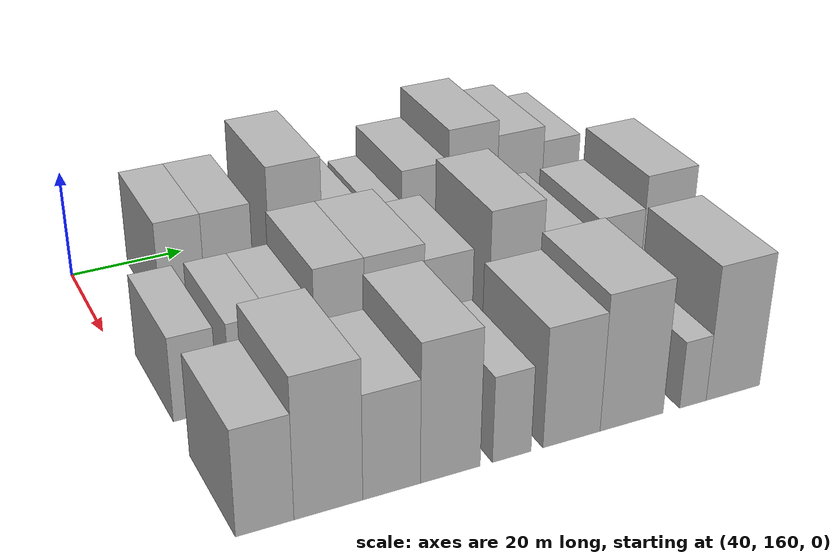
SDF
<sdf version="1.6">
 <world name="default">
  <model name="building_55">
   <static>1</static>
   <pose>50.0000 173.9923 0 0.000000 0.000000 0.000000</pose>
   <link name="link">
    <pose>0 0 9.00 0 0 0</pose>
    <collision name="collision"><geometry><box><size>20.0000 7.9048 18.0000</size></box></geometry></collision>
    <visual name="visual">
     <cast_shadows>0</cast_shadows>
     <geometry><box><size>20.0000 7.9048 18.0000</size></box></geometry>
     <material>
      <script>
       <uri>model://HANNAS_wall/materials/scripts</uri>
       <uri>model://HANNAS_wall/materials/textures</uri>
       <name>vrc/HANNAS_wall</name>
      </script>
     </material>
    </visual>
   </link>
  </model>
  <model name="building_56">
   <static>1</static>
   <pose>50.0000 182.2868 0 0.000000 0.000000 0.000000</pose>
   <link name="link">
    <pose>0 0 9.00 0 0 0</pose>
    <collision name="collision"><geometry><box><size>20.0000 8.6842 18.0000</size></box></geometry></collision>
    <visual name="visual">
     <cast_shadows>0</cast_shadows>
     <geometry><box><size>20.0000 8.6842 18.0000</size></box></geometry>
     <material>
      <script>
       <uri>model://HANNAS_wall/materials/scripts</uri>
       <uri>model://HANNAS_wall/materials/textures</uri>
       <name>vrc/HANNAS_wall</name>
      </script>
     </material>
    </visual>
   </link>
  </model>
  <model name="building_57">
   <static>1</static>
   <pose>50.0000 194.4959 0 0.000000 0.000000 0.000000</pose>
   <link name="link">
    <pose>0 0 12.00 0 0 0</pose>
    <collision name="collision"><geometry><box><size>20.0000 9.7340 24.0000</size></box></geometry></collision>
    <visual name="visual">
     <cast_shadows>0</cast_shadows>
     <geometry><box><size>20.0000 9.7340 24.0000</size></box></geometry>
     <material>
      <script>
       <uri>model://HANNAS_wall/materials/scripts</uri>
       <uri>model://HANNAS_wall/materials/textures</uri>
       <name>vrc/HANNAS_wall</name>
      </script>
     </material>
    </visual>
   </link>
  </model>
  <model name="building_58">
   <static>1</static>
   <pose>50.0000 202.5666 0 0.000000 0.000000 0.000000</pose>
   <link name="link">
    <pose>0 0 7.50 0 0 0</pose>
    <collision name="collision"><geometry><box><size>20.0000 6.4074 15.0000</size></box></geometry></collision>
    <visual name="visual">
     <cast_shadows>0</cast_shadows>
     <geometry><box><size>20.0000 6.4074 15.0000</size></box></geometry>
     <material>
      <script>
       <uri>model://HANNAS_wall/materials/scripts</uri>
       <uri>model://HANNAS_wall/materials/textures</uri>
       <name>vrc/HANNAS_wall</name>
      </script>
     </material>
    </visual>
   </link>
  </model>
  <model name="building_59">
   <static>1</static>
   <pose>50.0000 211.6004 0 0.000000 0.000000 0.000000</pose>
   <link name="link">
    <pose>0 0 6.00 0 0 0</pose>
    <collision name="collision"><geometry><box><size>20.0000 5.6602 12.0000</size></box></geometry></collision>
    <visual name="visual">
     <cast_shadows>0</cast_shadows>
     <geometry><box><size>20.0000 5.6602 12.0000</size></box></geometry>
     <material>
      <script>
       <uri>model://HANNAS_wall/materials/scripts</uri>
       <uri>model://HANNAS_wall/materials/textures</uri>
       <name>vrc/HANNAS_wall</name>
      </script>
     </material>
    </visual>
   </link>
  </model>
  <model name="building_60">
   <static>1</static>
   <pose>50.0000 218.9166 0 0.000000 0.000000 0.000000</pose>
   <link name="link">
    <pose>0 0 9.00 0 0 0</pose>
    <collision name="collision"><geometry><box><size>20.0000 8.9720 18.0000</size></box></geometry></collision>
    <visual name="visual">
     <cast_shadows>0</cast_shadows>
     <geometry><box><size>20.0000 8.9720 18.0000</size></box></geometry>
     <material>
      <script>
       <uri>model://HANNAS_wall/materials/scripts</uri>
       <uri>model://HANNAS_wall/materials/textures</uri>
       <name>vrc/HANNAS_wall</name>
      </script>
     </material>
    </visual>
   </link>
  </model>
  <model name="building_61">
   <static>1</static>
   <pose>50.0000 228.2764 0 0.000000 0.000000 0.000000</pose>
   <link name="link">
    <pose>0 0 12.00 0 0 0</pose>
    <collision name="collision"><geometry><box><size>20.0000 9.7477 24.0000</size></box></geometry></collision>
    <visual name="visual">
     <cast_shadows>0</cast_shadows>
     <geometry><box><size>20.0000 9.7477 24.0000</size></box></geometry>
     <material>
      <script>
       <uri>model://HANNAS_wall/materials/scripts</uri>
       <uri>model://HANNAS_wall/materials/textures</uri>
       <name>vrc/HANNAS_wall</name>
      </script>
     </material>
    </visual>
   </link>
  </model>
  <model name="building_62">
   <static>1</static>
   <pose>50.0000 237.7751 0 0.000000 0.000000 0.000000</pose>
   <link name="link">
    <pose>0 0 10.50 0 0 0</pose>
    <collision name="collision"><geometry><box><size>20.0000 9.2495 21.0000</size></box></geometry></collision>
    <visual name="visual">
     <cast_shadows>0</cast_shadows>
     <geometry><box><size>20.0000 9.2495 21.0000</size></box></geometry>
     <material>
      <script>
       <uri>model://HANNAS_wall/materials/scripts</uri>
       <uri>model://HANNAS_wall/materials/textures</uri>
       <name>vrc/HANNAS_wall</name>
      </script>
     </material>
    </visual>
   </link>
  </model>
  <model name="building_63">
   <static>1</static>
   <pose>50.0000 246.1008 0 0.000000 0.000000 0.000000</pose>
   <link name="link">
    <pose>0 0 9.00 0 0 0</pose>
    <collision name="collision"><geometry><box><size>20.0000 7.4020 18.0000</size></box></geometry></collision>
    <visual name="visual">
     <cast_shadows>0</cast_shadows>
     <geometry><box><size>20.0000 7.4020 18.0000</size></box></geometry>
     <material>
      <script>
       <uri>model://HANNAS_wall/materials/scripts</uri>
       <uri>model://HANNAS_wall/materials/textures</uri>
       <name>vrc/HANNAS_wall</name>
      </script>
     </material>
    </visual>
   </link>
  </model>
  <model name="building_130">
   <static>1</static>
   <pose>79.0000 166.5161 0 0.000000 0.000000 0.000000</pose>
   <link name="link">
    <pose>0 0 7.50 0 0 0</pose>
    <collision name="collision"><geometry><box><size>20.0000 7.1336 15.0000</size></box></geometry></collision>
    <visual name="visual">
     <cast_shadows>0</cast_shadows>
     <geometry><box><size>20.0000 7.1336 15.0000</size></box></geometry>
     <material>
      <script>
       <uri>model://HANNAS_wall/materials/scripts</uri>
       <uri>model://HANNAS_wall/materials/textures</uri>
       <name>vrc/HANNAS_wall</name>
      </script>
     </material>
    </visual>
   </link>
  </model>
  <model name="building_131">
   <static>1</static>
   <pose>79.0000 175.6493 0 0.000000 0.000000 0.000000</pose>
   <link name="link">
    <pose>0 0 7.50 0 0 0</pose>
    <collision name="collision"><geometry><box><size>20.0000 7.1329 15.0000</size></box></geometry></collision>
    <visual name="visual">
     <cast_shadows>0</cast_shadows>
     <geometry><box><size>20.0000 7.1329 15.0000</size></box></geometry>
     <material>
      <script>
       <uri>model://HANNAS_wall/materials/scripts</uri>
       <uri>model://HANNAS_wall/materials/textures</uri>
       <name>vrc/HANNAS_wall</name>
      </script>
     </material>
    </visual>
   </link>
  </model>
  <model name="building_132">
   <static>1</static>
   <pose>79.0000 182.7060 0 0.000000 0.000000 0.000000</pose>
   <link name="link">
    <pose>0 0 7.50 0 0 0</pose>
    <collision name="collision"><geometry><box><size>20.0000 6.9805 15.0000</size></box></geometry></collision>
    <visual name="visual">
     <cast_shadows>0</cast_shadows>
     <geometry><box><size>20.0000 6.9805 15.0000</size></box></geometry>
     <material>
      <script>
       <uri>model://HANNAS_wall/materials/scripts</uri>
       <uri>model://HANNAS_wall/materials/textures</uri>
       <name>vrc/HANNAS_wall</name>
      </script>
     </material>
    </visual>
   </link>
  </model>
  <model name="building_133">
   <static>1</static>
   <pose>79.0000 190.4262 0 0.000000 0.000000 0.000000</pose>
   <link name="link">
    <pose>0 0 10.50 0 0 0</pose>
    <collision name="collision"><geometry><box><size>20.0000 8.4598 21.0000</size></box></geometry></collision>
    <visual name="visual">
     <cast_shadows>0</cast_shadows>
     <geometry><box><size>20.0000 8.4598 21.0000</size></box></geometry>
     <material>
      <script>
       <uri>model://HANNAS_wall/materials/scripts</uri>
       <uri>model://HANNAS_wall/materials/textures</uri>
       <name>vrc/HANNAS_wall</name>
      </script>
     </material>
    </visual>
   </link>
  </model>
  <model name="building_134">
   <static>1</static>
   <pose>79.0000 199.7862 0 0.000000 0.000000 0.000000</pose>
   <link name="link">
    <pose>0 0 10.50 0 0 0</pose>
    <collision name="collision"><geometry><box><size>20.0000 10.2602 21.0000</size></box></geometry></collision>
    <visual name="visual">
     <cast_shadows>0</cast_shadows>
     <geometry><box><size>20.0000 10.2602 21.0000</size></box></geometry>
     <material>
      <script>
       <uri>model://HANNAS_wall/materials/scripts</uri>
       <uri>model://HANNAS_wall/materials/textures</uri>
       <name>vrc/HANNAS_wall</name>
      </script>
     </material>
    </visual>
   </link>
  </model>
  <model name="building_135">
   <static>1</static>
   <pose>79.0000 209.2222 0 0.000000 0.000000 0.000000</pose>
   <link name="link">
    <pose>0 0 9.00 0 0 0</pose>
    <collision name="collision"><geometry><box><size>20.0000 8.6118 18.0000</size></box></geometry></collision>
    <visual name="visual">
     <cast_shadows>0</cast_shadows>
     <geometry><box><size>20.0000 8.6118 18.0000</size></box></geometry>
     <material>
      <script>
       <uri>model://HANNAS_wall/materials/scripts</uri>
       <uri>model://HANNAS_wall/materials/textures</uri>
       <name>vrc/HANNAS_wall</name>
      </script>
     </material>
    </visual>
   </link>
  </model>
  <model name="building_136">
   <static>1</static>
   <pose>79.0000 221.3750 0 0.000000 0.000000 0.000000</pose>
   <link name="link">
    <pose>0 0 12.00 0 0 0</pose>
    <collision name="collision"><geometry><box><size>20.0000 9.6940 24.0000</size></box></geometry></collision>
    <visual name="visual">
     <cast_shadows>0</cast_shadows>
     <geometry><box><size>20.0000 9.6940 24.0000</size></box></geometry>
     <material>
      <script>
       <uri>model://HANNAS_wall/materials/scripts</uri>
       <uri>model://HANNAS_wall/materials/textures</uri>
       <name>vrc/HANNAS_wall</name>
      </script>
     </material>
    </visual>
   </link>
  </model>
  <model name="building_137">
   <static>1</static>
   <pose>79.0000 229.8721 0 0.000000 0.000000 0.000000</pose>
   <link name="link">
    <pose>0 0 9.00 0 0 0</pose>
    <collision name="collision"><geometry><box><size>20.0000 7.3002 18.0000</size></box></geometry></collision>
    <visual name="visual">
     <cast_shadows>0</cast_shadows>
     <geometry><box><size>20.0000 7.3002 18.0000</size></box></geometry>
     <material>
      <script>
       <uri>model://HANNAS_wall/materials/scripts</uri>
       <uri>model://HANNAS_wall/materials/textures</uri>
       <name>vrc/HANNAS_wall</name>
      </script>
     </material>
    </visual>
   </link>
  </model>
  <model name="building_138">
   <static>1</static>
   <pose>79.0000 240.8818 0 0.000000 0.000000 0.000000</pose>
   <link name="link">
    <pose>0 0 9.00 0 0 0</pose>
    <collision name="collision"><geometry><box><size>20.0000 8.7191 18.0000</size></box></geometry></collision>
    <visual name="visual">
     <cast_shadows>0</cast_shadows>
     <geometry><box><size>20.0000 8.7191 18.0000</size></box></geometry>
     <material>
      <script>
       <uri>model://HANNAS_wall/materials/scripts</uri>
       <uri>model://HANNAS_wall/materials/textures</uri>
       <name>vrc/HANNAS_wall</name>
      </script>
     </material>
    </visual>
   </link>
  </model>
  <model name="building_139">
   <static>1</static>
   <pose>79.0000 250.0585 0 0.000000 0.000000 0.000000</pose>
   <link name="link">
    <pose>0 0 12.00 0 0 0</pose>
    <collision name="collision"><geometry><box><size>20.0000 9.6342 24.0000</size></box></geometry></collision>
    <visual name="visual">
     <cast_shadows>0</cast_shadows>
     <geometry><box><size>20.0000 9.6342 24.0000</size></box></geometry>
     <material>
      <script>
       <uri>model://HANNAS_wall/materials/scripts</uri>
       <uri>model://HANNAS_wall/materials/textures</uri>
       <name>vrc/HANNAS_wall</name>
      </script>
     </material>
    </visual>
   </link>
  </model>
  <model name="building_206">
   <static>1</static>
   <pose>108.0000 166.8557 0 0.000000 0.000000 0.000000</pose>
   <link name="link">
    <pose>0 0 9.00 0 0 0</pose>
    <collision name="collision"><geometry><box><size>20.0000 8.5937 18.0000</size></box></geometry></collision>
    <visual name="visual">
     <cast_shadows>0</cast_shadows>
     <geometry><box><size>20.0000 8.5937 18.0000</size></box></geometry>
     <material>
      <script>
       <uri>model://HANNAS_wall/materials/scripts</uri>
       <uri>model://HANNAS_wall/materials/textures</uri>
       <name>vrc/HANNAS_wall</name>
      </script>
     </material>
    </visual>
   </link>
  </model>
  <model name="building_207">
   <static>1</static>
   <pose>108.0000 176.3578 0 0.000000 0.000000 0.000000</pose>
   <link name="link">
    <pose>0 0 12.00 0 0 0</pose>
    <collision name="collision"><geometry><box><size>20.0000 10.4105 24.0000</size></box></geometry></collision>
    <visual name="visual">
     <cast_shadows>0</cast_shadows>
     <geometry><box><size>20.0000 10.4105 24.0000</size></box></geometry>
     <material>
      <script>
       <uri>model://HANNAS_wall/materials/scripts</uri>
       <uri>model://HANNAS_wall/materials/textures</uri>
       <name>vrc/HANNAS_wall</name>
      </script>
     </material>
    </visual>
   </link>
  </model>
  <model name="building_208">
   <static>1</static>
   <pose>108.0000 186.0483 0 0.000000 0.000000 0.000000</pose>
   <link name="link">
    <pose>0 0 9.00 0 0 0</pose>
    <collision name="collision"><geometry><box><size>20.0000 8.9705 18.0000</size></box></geometry></collision>
    <visual name="visual">
     <cast_shadows>0</cast_shadows>
     <geometry><box><size>20.0000 8.9705 18.0000</size></box></geometry>
     <material>
      <script>
       <uri>model://HANNAS_wall/materials/scripts</uri>
       <uri>model://HANNAS_wall/materials/textures</uri>
       <name>vrc/HANNAS_wall</name>
      </script>
     </material>
    </visual>
   </link>
  </model>
  <model name="building_209">
   <static>1</static>
   <pose>108.0000 195.3471 0 0.000000 0.000000 0.000000</pose>
   <link name="link">
    <pose>0 0 12.00 0 0 0</pose>
    <collision name="collision"><geometry><box><size>20.0000 9.6270 24.0000</size></box></geometry></collision>
    <visual name="visual">
     <cast_shadows>0</cast_shadows>
     <geometry><box><size>20.0000 9.6270 24.0000</size></box></geometry>
     <material>
      <script>
       <uri>model://HANNAS_wall/materials/scripts</uri>
       <uri>model://HANNAS_wall/materials/textures</uri>
       <name>vrc/HANNAS_wall</name>
      </script>
     </material>
    </visual>
   </link>
  </model>
  <model name="building_210">
   <static>1</static>
   <pose>108.0000 205.3694 0 0.000000 0.000000 0.000000</pose>
   <link name="link">
    <pose>0 0 7.50 0 0 0</pose>
    <collision name="collision"><geometry><box><size>20.0000 6.4176 15.0000</size></box></geometry></collision>
    <visual name="visual">
     <cast_shadows>0</cast_shadows>
     <geometry><box><size>20.0000 6.4176 15.0000</size></box></geometry>
     <material>
      <script>
       <uri>model://HANNAS_wall/materials/scripts</uri>
       <uri>model://HANNAS_wall/materials/textures</uri>
       <name>vrc/HANNAS_wall</name>
      </script>
     </material>
    </visual>
   </link>
  </model>
  <model name="building_211">
   <static>1</static>
   <pose>108.0000 215.4752 0 0.000000 0.000000 0.000000</pose>
   <link name="link">
    <pose>0 0 10.50 0 0 0</pose>
    <collision name="collision"><geometry><box><size>20.0000 9.7940 21.0000</size></box></geometry></collision>
    <visual name="visual">
     <cast_shadows>0</cast_shadows>
     <geometry><box><size>20.0000 9.7940 21.0000</size></box></geometry>
     <material>
      <script>
       <uri>model://HANNAS_wall/materials/scripts</uri>
       <uri>model://HANNAS_wall/materials/textures</uri>
       <name>vrc/HANNAS_wall</name>
      </script>
     </material>
    </visual>
   </link>
  </model>
  <model name="building_212">
   <static>1</static>
   <pose>108.0000 225.9453 0 0.000000 0.000000 0.000000</pose>
   <link name="link">
    <pose>0 0 12.00 0 0 0</pose>
    <collision name="collision"><geometry><box><size>20.0000 11.1463 24.0000</size></box></geometry></collision>
    <visual name="visual">
     <cast_shadows>0</cast_shadows>
     <geometry><box><size>20.0000 11.1463 24.0000</size></box></geometry>
     <material>
      <script>
       <uri>model://HANNAS_wall/materials/scripts</uri>
       <uri>model://HANNAS_wall/materials/textures</uri>
       <name>vrc/HANNAS_wall</name>
      </script>
     </material>
    </visual>
   </link>
  </model>
  <model name="building_213">
   <static>1</static>
   <pose>108.0000 236.9356 0 0.000000 0.000000 0.000000</pose>
   <link name="link">
    <pose>0 0 6.00 0 0 0</pose>
    <collision name="collision"><geometry><box><size>20.0000 4.8342 12.0000</size></box></geometry></collision>
    <visual name="visual">
     <cast_shadows>0</cast_shadows>
     <geometry><box><size>20.0000 4.8342 12.0000</size></box></geometry>
     <material>
      <script>
       <uri>model://HANNAS_wall/materials/scripts</uri>
       <uri>model://HANNAS_wall/materials/textures</uri>
       <name>vrc/HANNAS_wall</name>
      </script>
     </material>
    </visual>
   </link>
  </model>
  <model name="building_214">
   <static>1</static>
   <pose>108.0000 244.3381 0 0.000000 0.000000 0.000000</pose>
   <link name="link">
    <pose>0 0 12.00 0 0 0</pose>
    <collision name="collision"><geometry><box><size>20.0000 9.9708 24.0000</size></box></geometry></collision>
    <visual name="visual">
     <cast_shadows>0</cast_shadows>
     <geometry><box><size>20.0000 9.9708 24.0000</size></box></geometry>
     <material>
      <script>
       <uri>model://HANNAS_wall/materials/scripts</uri>
       <uri>model://HANNAS_wall/materials/textures</uri>
       <name>vrc/HANNAS_wall</name>
      </script>
     </material>
    </visual>
   </link>
  </model>
 </world>
</sdf>
